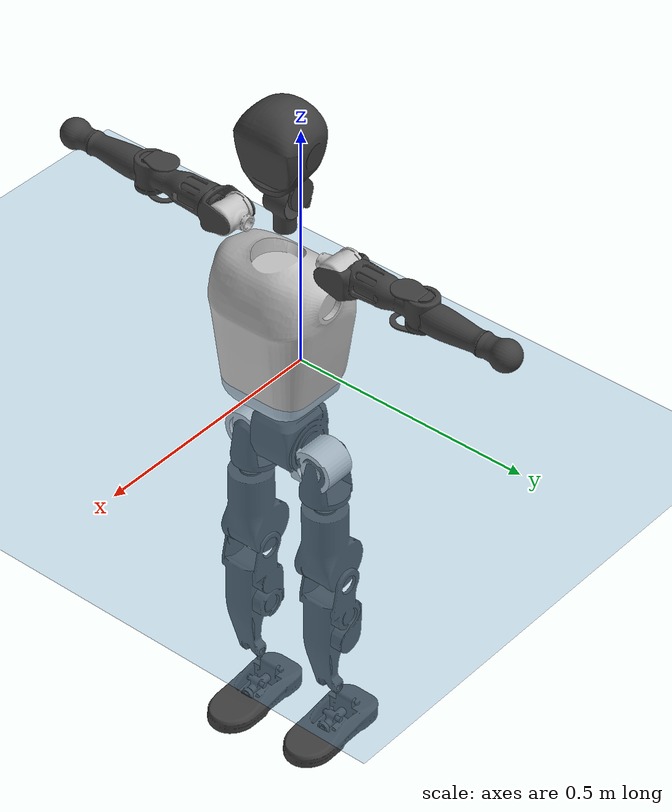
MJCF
<mujoco model="T1">
  <compiler angle="radian" assetdir="assets" balanceinertia="true" inertiafromgeom="false"/>

  <option timestep="0.005" density="1.2" viscosity="2e-05"/>

  <size nkey="1"/>

  <visual>
    <quality shadowsize="8192"/>
    <map shadowclip="0.5"/>
  </visual>

  <default>
    <default class="/">
      <joint armature="0.01" damping="0.01" frictionloss="0.1"/>
      <geom contype="0" conaffinity="0" group="1" solref="-1000 -80"/>
      <site size="0.01 0.005 0.005" group="5"/>
      <general forcelimited="true" biastype="affine" gainprm="25" biasprm="0 -25 -0.6"/>
      <default class="t1">
        <geom rgba="0.25 0.25 0.25 1"/>
        <default class="visual">
          <geom type="mesh" group="2"/>
        </default>
        <default class="collision">
          <geom group="3"/>
        </default>
        <default class="foot">
          <geom size="0.1115 0.05 0.015" type="box" condim="6" group="4" priority="1" solimp="0.015 1 0.015"/>
        </default>
        <default class="reward_collision_sphere">
          <geom group="5" rgba="1 0 0 1"/>
        </default>
      </default>
    </default>
  </default>

  <asset>
    <texture type="skybox" colorspace="auto" name="//unnamed_texture_0" builtin="gradient" rgb1="0.95 0.95 0.95" rgb2="0.95 0.95 0.95" width="100" height="600"/>
    <texture type="2d" colorspace="auto" name="texplane" builtin="checker" rgb1="0.345 0.575 0.748" rgb2="0.345 0.575 0.748" markrgb="1 1 1" width="512" height="512"/>
    <material name="MatPlane" class="/" texture="texplane" texuniform="true" texrepeat="2 2" specular="0.9"/>
    <mesh name="Trunk" class="/" file="Trunk.stl"/>
    <mesh name="H1" class="/" file="H1.stl"/>
    <mesh name="H2" class="/" file="H2.stl"/>
    <mesh name="AL1" class="/" file="AL1.stl"/>
    <mesh name="AL2" class="/" file="AL2.stl"/>
    <mesh name="AL3" class="/" file="AL3.stl"/>
    <mesh name="left_hand_link" class="/" file="left_hand_link.stl"/>
    <mesh name="AR1" class="/" file="AR1.stl"/>
    <mesh name="AR2" class="/" file="AR2.stl"/>
    <mesh name="AR3" class="/" file="AR3.stl"/>
    <mesh name="right_hand_link" class="/" file="right_hand_link.stl"/>
    <mesh name="Waist" class="/" file="Waist.stl"/>
    <mesh name="Hip_Pitch_Left" class="/" file="Hip_Pitch_Left.stl"/>
    <mesh name="Hip_Roll_Left" class="/" file="Hip_Roll_Left.stl"/>
    <mesh name="Hip_Yaw_Left" class="/" file="Hip_Yaw_Left.stl"/>
    <mesh name="Shank_Left" class="/" file="Shank_Left.stl"/>
    <mesh name="Ankle_Cross_Left" class="/" file="Ankle_Cross_Left.stl"/>
    <mesh name="left_foot_link" class="/" file="left_foot_link.stl"/>
    <mesh name="Hip_Pitch_Right" class="/" file="Hip_Pitch_Right.stl"/>
    <mesh name="Hip_Roll_Right" class="/" file="Hip_Roll_Right.stl"/>
    <mesh name="Hip_Yaw_Right" class="/" file="Hip_Yaw_Right.stl"/>
    <mesh name="Shank_Right" class="/" file="Shank_Right.stl"/>
    <mesh name="Ankle_Cross_Right" class="/" file="Ankle_Cross_Right.stl"/>
    <mesh name="right_foot_link" class="/" file="right_foot_link.stl"/>
  </asset>

  <worldbody>
    <geom name="floor" class="/" size="100 100 0.125" type="plane" group="0" material="MatPlane"/>
    <light name="toplight_shadow" class="/" pos="0 0 5" dir="0.0990148 0.0990148 -0.990148" type="directional" ambient="0.04 0.04 0.04" diffuse="0.55 0.55 0.55" specular="0.12 0.12 0.12"/>
    <light name="toplight_fill" class="/" pos="0 0 5" dir="0.0990148 0.0990148 -0.990148" type="directional" castshadow="false" ambient="0.04 0.04 0.04" diffuse="0.3 0.3 0.3" specular="0.08 0.08 0.08"/>
    <body name="trunk" childclass="t1" pos="0.00177125 -0.00226156 -0.00235265" quat="1 -4.97713e-05 -0.00032181 0.000104097">
      <inertial pos="0.0334844 0.00212708 0.138108" quat="0.99996 0.00106273 -0.00863826 -0.00188676" mass="8.26158" diaginertia="0.00585294 0.0228145 0.215082"/>
      <joint name="//unnamed_joint_0" type="free" armature="0" damping="0" frictionloss="0"/>
      <geom name="//unnamed_geom_1" class="visual" rgba="0.76 0.76 0.76 1" mesh="Trunk"/>
      <geom name="//unnamed_geom_2" class="collision" size="0.0670401 0.0893868 0.13408" pos="0.0349652 0 0.157035" type="box"/>
      <geom name="//unnamed_geom_3" class="reward_collision_sphere" size="0.102795" pos="0.0349652 0 0.130863"/>
      <geom name="//unnamed_geom_4" class="reward_collision_sphere" size="0.013408" pos="0.0349652 0.0671691 0"/>
      <geom name="//unnamed_geom_5" class="reward_collision_sphere" size="0.013408" pos="0.0349652 -0.0671691 0"/>
      <geom name="//unnamed_geom_6" class="reward_collision_sphere" size="0.013408" pos="0.0349652 0.084554 0.235553"/>
      <geom name="//unnamed_geom_7" class="reward_collision_sphere" size="0.013408" pos="0.0349652 -0.084554 0.235553"/>
      <site name="imu" pos="0.0314206 -0.0333665 0.0303083" size="0.00893868"/>
      <camera name="track" pos="0 -1.58045 0" quat="0.707107 0.707107 0 0" mode="trackcom"/>
      <camera name="ego_camera" pos="0.0710959 0 0.549623" quat="-0.5 -0.5 0.5 0.5"/>
      <body name="H1" pos="0.0366223 -0.00256704 0.31669" quat="0.999996 0.000376365 4.45542e-05 -0.00293885">
        <inertial pos="-0.000373134 0.000648783 0.0760588" quat="0.765704 -0.0138737 -0.009063 0.64298" mass="0.270829" diaginertia="1.59279e-05 6.57456e-05 0.000543861"/>
        <joint name="AAHead_yaw" pos="0 0 0" axis="-0.00605148 0.00306107 0.999977" range="-1.5198 1.55061" armature="0.00582612" damping="0.0256108" frictionloss="0.0909828"/>
        <geom name="//unnamed_geom_8" class="visual" mesh="H1"/>
        <body name="H2" pos="-0.00798301 0.00146639 0.0806287" quat="1 5.47465e-06 -0.000261342 0.00016299">
          <inertial pos="0.00308797 0.00264908 0.12719" quat="0.987109 0.109652 -0.0760828 -0.0883362" mass="0.439744" diaginertia="0.000138415 0.000579047 0.00650156"/>
          <joint name="Head_pitch" pos="0 0 0" axis="0.0108785 -0.99991 0.00785063" range="-1.26488 0.380396" armature="0.00941972" damping="0.00706215" frictionloss="0.0792228"/>
          <geom name="//unnamed_geom_9" class="visual" mesh="H2"/>
          <geom name="//unnamed_geom_10" class="collision" size="0.0715094" pos="0.00582753 0 0.143949"/>
          <geom name="//unnamed_geom_11" class="reward_collision_sphere" size="0.0804481" pos="0.0116551 0 0.130863"/>
        </body>
      </body>
      <body name="AL1" pos="0.0389642 0.082133 0.288123" quat="0.999998 0.000370227 0.00135004 -0.00137671">
        <inertial pos="-0.000509126 0.0311737 -0.000364414" quat="0.512535 0.495548 -0.503158 0.488439" mass="0.389577" diaginertia="9.03438e-05 0.000396914 0.00112103"/>
        <joint name="Left_Shoulder_Pitch" pos="0 0 0" axis="0.0093459 0.999882 0.0122132" range="-3.30141 1.17892" armature="0.00839454" damping="0.0144264" frictionloss="0.0978978"/>
        <geom name="//unnamed_geom_12" class="visual" rgba="0.76 0.76 0.76 1" mesh="AL1"/>
        <body name="AL2" pos="0.00374155 0.0368475 -0.000236775" quat="1 -0.000317811 5.81184e-05 -3.81905e-05">
          <inertial pos="0.00497211 0.0283096 -0.00506353" quat="0.488765 0.505036 -0.493027 0.512808" mass="0.103952" diaginertia="2.62256e-05 0.000110192 0.000650701"/>
          <joint name="Left_Shoulder_Roll" pos="0 0 0" axis="-0.999986 0.0025685 0.00460913" range="-1.69366 1.62055" armature="0.0114518" damping="0.0128601" frictionloss="0.0871309"/>
          <geom name="//unnamed_geom_13" class="visual" mesh="AL2"/>
          <body name="AL3" pos="-0.00209856 0.045169 0.00488922" quat="0.999999 -0.000542765 -0.000556101 0.000868833">
            <inertial pos="-0.00225414 0.067388 -0.000502338" quat="0.705737 0.708469 0.000313108 0.00247419" mass="0.698879" diaginertia="0.000883737 0.00379176 0.00256025"/>
            <joint name="Left_Elbow_Pitch" pos="0 0 0" axis="-0.0057825 -0.999329 -0.0361693" stiffness="0.0360577" range="-2.39683 2.19061" armature="0.0123867" damping="0.0489201" frictionloss="0.102058"/>
            <geom name="//unnamed_geom_14" class="visual" mesh="AL3"/>
            <geom name="//unnamed_geom_15" class="collision" size="0.026816 0.0670401" pos="0 0.0395112 0" quat="0.707105 0.707108 0 0" type="cylinder"/>
            <geom name="//unnamed_geom_16" class="reward_collision_sphere" size="0.0321792"/>
            <body name="left_hand_link" pos="0.00378814 0.112934 -0.00336239" quat="1 4.20847e-05 -0.000114268 -3.43186e-05">
              <inertial pos="-0.00164288 0.0888971 -0.000275594" quat="0.707218 0.706994 0.0010654 -0.00119328" mass="0.237794" diaginertia="0.000507785 0.00233412 0.000854065"/>
              <joint name="Left_Elbow_Yaw" pos="0 0 0" axis="-0.00124195 0.0109492 0.999939" range="-2.43394 0.039682" armature="0.00592489" damping="0.0177941" frictionloss="0.0955997"/>
              <geom name="//unnamed_geom_17" class="visual" mesh="left_hand_link"/>
              <geom name="//unnamed_geom_18" class="collision" size="0.026816 0.0782134" pos="0 0.102729 0" quat="0.707105 0.707108 0 0" type="cylinder"/>
              <geom name="//unnamed_geom_19" class="reward_collision_sphere" size="0.0446934"/>
              <geom name="//unnamed_geom_20" class="reward_collision_sphere" size="0.0312854" pos="0 0.0869247 0"/>
              <geom name="//unnamed_geom_21" class="reward_collision_sphere" size="0.0312854" pos="0 0.169898 0"/>
            </body>
          </body>
        </body>
      </body>
      <body name="AR1" pos="0.0377888 -0.0848955 0.287031" quat="0.999999 0.00108024 -0.000250762 -0.000239737">
        <inertial pos="0.00539613 -0.0350518 -0.00289407" quat="0.510765 0.463836 -0.519731 0.50384" mass="0.381976" diaginertia="9.42714e-05 0.000409405 0.0010536"/>
        <joint name="Right_Shoulder_Pitch" pos="0 0 0" axis="-0.00203776 -0.999913 -0.0130525" range="-1.21552 3.29503" armature="0.00946595" damping="0" frictionloss="0.101683"/>
        <geom name="//unnamed_geom_22" class="visual" rgba="0.76 0.76 0.76 1" mesh="AR1"/>
        <body name="AR2" pos="-0.00167013 -0.0379762 -0.000342421" quat="1 -0.000421265 -0.00010609 0.000244013">
          <inertial pos="0.00359486 -0.0277807 -0.000296953" quat="0.512255 0.487906 -0.510066 0.489259" mass="0.111072" diaginertia="2.75682e-05 9.92687e-05 0.000665679"/>
          <joint name="Right_Shoulder_Roll" pos="0 0 0" axis="-0.999996 -0.000639029 -0.00258255" range="-1.75578 1.43656" armature="0.0102648" damping="0" frictionloss="0.099361"/>
          <geom name="//unnamed_geom_23" class="visual" mesh="AR2"/>
          <body name="AR3" pos="-0.00228945 -0.0505731 0.00311804" quat="1 -0.000156889 3.25395e-05 0.000282287">
            <inertial pos="0.000549144 -0.0614408 -0.00386179" quat="0.701486 0.712575 -0.00764676 -0.0097842" mass="0.743201" diaginertia="0.000857256 0.00408696 0.0022705"/>
            <joint name="Right_Elbow_Pitch" pos="0 0 0" axis="0.000385831 1 -0.00069173" range="-2.30315 2.33134" armature="0.00867133" damping="0" frictionloss="0.0885547"/>
            <geom name="//unnamed_geom_24" class="visual" mesh="AR3"/>
            <geom name="//unnamed_geom_25" class="collision" size="0.026816 0.0670401" pos="0 -0.0395112 0" quat="0.707105 0.707108 0 0" type="cylinder"/>
            <geom name="//unnamed_geom_26" class="reward_collision_sphere" size="0.0321792"/>
            <body name="right_hand_link" pos="-0.00257183 -0.116654 -0.00143684" quat="1 -1.40317e-05 2.75363e-06 3.09036e-05">
              <inertial pos="0.000240735 -0.0890521 0.00464008" quat="0.713703 0.700441 0.00312443 -0.00080753" mass="0.229466" diaginertia="0.000556008 0.00247998 0.000846595"/>
              <joint name="Right_Elbow_Yaw" pos="0 0 0" axis="-0.00191258 -0.0121894 0.999924" range="0.0455446 2.45546" armature="0.0102993" damping="0.00181417" frictionloss="0.0786651"/>
              <geom name="//unnamed_geom_27" class="visual" mesh="right_hand_link"/>
              <geom name="//unnamed_geom_28" class="collision" size="0.026816 0.0782134" pos="0 -0.102729 0" quat="0.707105 0.707108 0 0" type="cylinder"/>
              <geom name="//unnamed_geom_29" class="reward_collision_sphere" size="0.0446934"/>
              <geom name="//unnamed_geom_30" class="reward_collision_sphere" size="0.0312854" pos="0 -0.0869247 0"/>
              <geom name="//unnamed_geom_31" class="reward_collision_sphere" size="0.0312854" pos="0 -0.169898 0"/>
            </body>
          </body>
        </body>
      </body>
      <body name="Waist" pos="0.032356 0.00256051 -0.150375" quat="1 0.000283912 0.000143512 0.000186289">
        <inertial pos="0.00957648 -0.00308365 0.00971143" quat="0.984534 -0.00420057 -0.175042 -0.00594081" mass="1.79148" diaginertia="0.00038816 0.00158038 0.0178664"/>
        <joint name="Waist" pos="0 0 0" axis="-0.0314876 -0.0104846 0.999449" range="-1.54925 1.55349" armature="0.00911332" damping="0" frictionloss="0.086924"/>
        <geom name="//unnamed_geom_32" class="visual" mesh="Waist"/>
        <body name="Hip_Pitch_Left" pos="0.00595736 0.0817661 -0.0027233" quat="0.999992 -0.00186373 0.00196538 0.00305343">
          <inertial pos="0.00406405 -0.0121654 -0.0255861" quat="0.976521 0.215127 0.010615 0.00373963" mass="0.786953" diaginertia="0.000132732 0.000477208 0.00479581"/>
          <joint name="Left_Hip_Pitch" pos="0 0 0" axis="0.000141643 0.999992 0.00405234" stiffness="0.00631512" range="-1.83881 1.59904" armature="0.0106967" damping="0" frictionloss="0.0589816"/>
          <geom name="//unnamed_geom_33" class="visual" rgba="0.76 0.76 0.76 1" mesh="Hip_Pitch_Left"/>
          <body name="Hip_Roll_Left" pos="-0.00746848 0.00205902 -0.0182739" quat="0.999992 -0.000576374 0.00378874 0.00143696">
            <inertial pos="-0.001383 -3.40125e-06 -0.0642596" quat="0.707484 -0.0157007 -0.0112144 0.706466" mass="0.287254" diaginertia="0.000116156 0.000488559 0.00199286"/>
            <joint name="Left_Hip_Roll" pos="0 0 0" axis="-0.999944 -0.00741282 -0.00756133" stiffness="0.00624972" range="-1.56149 0.224732" armature="0.00786355" damping="0" frictionloss="0.0890723"/>
            <geom name="//unnamed_geom_34" class="visual" mesh="Hip_Roll_Left"/>
            <geom name="//unnamed_geom_35" class="reward_collision_sphere" size="0.0491627"/>
            <body name="Hip_Yaw_Left" pos="0.000128415 0.000901763 -0.10839" quat="1 -0.000627509 0.000413658 -0.000233475">
              <inertial pos="-0.00401749 -0.00800112 -0.122693" quat="0.692418 -0.0305352 -0.0320601 0.720137" mass="1.46126" diaginertia="0.00163448 0.00736808 0.00962913"/>
              <joint name="Left_Hip_Yaw" pos="0 0 0" axis="-0.0029201 0.00288222 -0.999992" range="-1.0512 0.977347" armature="0.00874613" damping="0" frictionloss="0.0792215"/>
              <geom name="//unnamed_geom_36" class="visual" mesh="Hip_Yaw_Left"/>
              <geom name="//unnamed_geom_37" class="collision" size="0.0446934 0.0715094" type="cylinder"/>
              <body name="Shank_Left" pos="-0.0120247 0.00465814 -0.173807" quat="0.999998 -0.00184465 -2.72877e-05 0.000616899">
                <inertial pos="-0.00293467 0.00266456 -0.162483" quat="0.995385 -0.00459784 -0.0370323 0.0884126" mass="1.17469" diaginertia="0.00229576 0.0102519 0.00695164"/>
                <joint name="Left_Knee_Pitch" pos="0 0 0" axis="0.00453933 0.999983 -0.00373933" range="-0.0178539 2.43343" armature="0.00729333" damping="0.00810933" frictionloss="0.0909908"/>
                <geom name="//unnamed_geom_38" class="visual" mesh="Shank_Left"/>
                <geom name="//unnamed_geom_39" class="collision" size="0.0446934 0.0670401" pos="0 0 -0.157035" type="cylinder"/>
                <geom name="//unnamed_geom_40" class="reward_collision_sphere" size="0.0581014"/>
                <body name="Ankle_Cross_Left" pos="-0.00165083 0.00351906 -0.365561" quat="1 -1.03897e-06 -4.49197e-07 -9.37433e-06">
                  <inertial pos="-0.00404303 0.00227237 -0.00941612" quat="0.44081 0.541497 0.564423 0.440334" mass="0.0543606" diaginertia="1.89869e-06 8.10647e-06 4.46579e-05"/>
                  <joint name="Left_Ankle_Pitch" pos="0 0 0" axis="-0.00304147 0.999995 -0.00120282" range="-0.738332 0.220834" armature="0.00807572" damping="0.0450064" frictionloss="0.0820085"/>
                  <geom name="//unnamed_geom_41" class="visual" mesh="Ankle_Cross_Left"/>
                  <body name="left_foot_link" pos="0.00105782 0.000874741 -0.0105169" quat="0.999995 0.000234924 -0.00310033 -0.00111157">
                    <inertial pos="-0.00192959 0.00234618 -0.00969638" quat="-0.00873102 0.625271 -0.015394 0.780207" mass="0.437604" diaginertia="0.000162635 0.000669681 0.00679348"/>
                    <joint name="Left_Ankle_Roll" pos="0 0 0" axis="-0.999725 -0.0162262 0.0169498" range="-0.423381 0.301983" armature="0.0086349" damping="0.00583666" frictionloss="0.051951"/>
                    <geom name="//unnamed_geom_42" class="visual" mesh="left_foot_link"/>
                    <geom name="left_foot" class="foot" size="0.104638 0.0563492 0.0092014" pos="0.00582753 0 -0.0196294"/>
                    <geom name="//unnamed_geom_44" class="reward_collision_sphere" size="0.0464811" pos="0.00582753 0 -0.0196294"/>
                    <geom name="//unnamed_geom_45" class="reward_collision_sphere" size="0.026816" pos="0.0553615 -0.0181752 -0.0196294"/>
                    <geom name="//unnamed_geom_46" class="reward_collision_sphere" size="0.026816" pos="-0.0407927 -0.0181752 -0.0196294"/>
                    <site name="left_foot" class="foot" pos="0.00582753 0 -0.0196294" size="0.00893868"/>
                  </body>
                </body>
              </body>
            </body>
          </body>
        </body>
        <body name="Hip_Pitch_Right" pos="0.000582017 -0.0840149 0.000665633" quat="0.999999 -0.000580311 0.000196727 0.000834593">
          <inertial pos="-2.73777e-05 0.00566241 -0.0230744" quat="0.966305 -0.25683 0.00964284 0.0141263" mass="0.79345" diaginertia="0.000132394 0.000487539 0.00518357"/>
          <joint name="Right_Hip_Pitch" pos="0 0 0" axis="0.00636416 -0.999978 -0.00184375" stiffness="0.00643955" range="-1.53786 1.82233" armature="0.00884368" damping="0.00749175" frictionloss="0.0905607"/>
          <geom name="//unnamed_geom_47" class="visual" rgba="0.76 0.76 0.76 1" mesh="Hip_Pitch_Right"/>
          <body name="Hip_Roll_Right" pos="-0.00276803 0.00100621 -0.0201524" quat="1 -0.000764308 -0.000161863 -0.000295021">
            <inertial pos="-6.68768e-05 -0.00215511 -0.0704462" quat="0.697347 -0.0137118 -0.000931693 0.716602" mass="0.294521" diaginertia="0.000122143 0.000488862 0.00214505"/>
            <joint name="Right_Hip_Roll" pos="0 0 0" axis="-0.999951 -0.00735321 -0.00667175" stiffness="0.0450619" range="-0.246495 1.57454" armature="0.00959468" damping="0.00533783" frictionloss="0.0893187"/>
            <geom name="//unnamed_geom_48" class="visual" mesh="Hip_Roll_Right"/>
            <geom name="//unnamed_geom_49" class="reward_collision_sphere" size="0.0491627"/>
            <body name="Hip_Yaw_Right" pos="0.00471873 -0.00776989 -0.107884" quat="1 -3.01301e-05 3.47867e-05 0.000171526">
              <inertial pos="-0.000633775 0.000402983 -0.109655" quat="0.712529 -0.0375121 -0.0145733 0.700487" mass="1.49963" diaginertia="0.00180803 0.00823096 0.0104983"/>
              <joint name="Right_Hip_Yaw" pos="0 0 0" axis="0.0132807 0.000725862 -0.999912" range="-1.10327 1.0298" armature="0.00997507" damping="0" frictionloss="0.0921583"/>
              <geom name="//unnamed_geom_50" class="visual" mesh="Hip_Yaw_Right"/>
              <geom name="//unnamed_geom_51" class="collision" size="0.0446934 0.0715094" type="cylinder"/>
              <body name="Shank_Right" pos="-0.00755416 -0.00358956 -0.178214" quat="1 4.24854e-05 5.99643e-05 0.000568547">
                <inertial pos="-0.0116749 0.00247446 -0.160467" quat="0.999034 -0.0162318 -0.0352568 -0.020581" mass="1.39365" diaginertia="0.00250148 0.0106609 0.00802217"/>
                <joint name="Right_Knee_Pitch" pos="0 0 0" axis="0.00206738 -0.999822 0.018733" range="-2.36449 0.0310849" armature="0.00816785" damping="0.0161258" frictionloss="0.0728721"/>
                <geom name="//unnamed_geom_52" class="visual" mesh="Shank_Right"/>
                <geom name="//unnamed_geom_53" class="collision" size="0.0446934 0.0670401" pos="0 0 -0.157035" type="cylinder"/>
                <geom name="//unnamed_geom_54" class="reward_collision_sphere" size="0.0581014"/>
                <body name="Ankle_Cross_Right" pos="0.000568829 0.00679678 -0.366393" quat="0.999995 -0.00253341 -0.00155571 0.000933817">
                  <inertial pos="-0.00425013 6.60042e-05 -0.0126983" quat="0.442663 0.546891 0.552566 0.446801" mass="0.0526856" diaginertia="2.06649e-06 7.89347e-06 4.28045e-05"/>
                  <joint name="Right_Ankle_Pitch" pos="0 0 0" axis="-0.00138109 -0.999996 0.0023886" range="-0.339743 0.731234" armature="0.00804883" damping="0" frictionloss="0.0898691"/>
                  <geom name="//unnamed_geom_55" class="visual" mesh="Ankle_Cross_Right"/>
                  <body name="right_foot_link" pos="0.00119297 0.000118105 -0.0135952" quat="0.999998 -0.00112859 -0.00154739 0.000275902">
                    <inertial pos="0.00357365 -0.00170375 -0.0113253" quat="0.000874795 0.623673 0.00429911 0.781673" mass="0.491704" diaginertia="0.000195939 0.00075816 0.00831853"/>
                    <joint name="Right_Ankle_Roll" pos="0 0 0" axis="-0.999915 0.00299734 0.0126496" range="-0.468405 0.452384" armature="0.0093824" damping="0.0173059" frictionloss="0.0974844"/>
                    <geom name="//unnamed_geom_56" class="visual" mesh="right_foot_link"/>
                    <geom name="right_foot" class="foot" size="0.0903885 0.0529042 0.0122023" pos="0.00582753 0 -0.0196294"/>
                    <geom name="//unnamed_geom_58" class="reward_collision_sphere" size="0.0357547"/>
                    <geom name="//unnamed_geom_59" class="reward_collision_sphere" size="0.026816" pos="0.00582753 0 -0.0196294"/>
                    <geom name="//unnamed_geom_60" class="reward_collision_sphere" size="0.026816" pos="0.0553615 0.0181752 -0.0196294"/>
                    <geom name="//unnamed_geom_61" class="reward_collision_sphere" size="0.026816" pos="-0.0407927 0.0181752 -0.0196294"/>
                    <site name="right_foot" class="foot" pos="0.00582753 0 -0.0196294" size="0.00893868"/>
                  </body>
                </body>
              </body>
            </body>
          </body>
        </body>
      </body>
    </body>
  </worldbody>

  <contact>
    <pair class="/" geom1="floor" geom2="left_foot" name="//unnamed_contact_0"/>
    <pair class="/" geom1="floor" geom2="right_foot" name="//unnamed_contact_1"/>
  </contact>

  <actuator>
    <general name="AAHead_yaw" class="/" joint="AAHead_yaw" forcerange="-5.99658 5.99658" gainprm="25.9286" biasprm="0 -25.9286 -0.570599"/>
    <general name="Head_pitch" class="/" joint="Head_pitch" forcerange="-6.66955 6.66955" gainprm="25.9286" biasprm="0 -25.9286 -0.570599"/>
    <general name="Left_Shoulder_Pitch" class="/" joint="Left_Shoulder_Pitch" forcerange="-17.3273 17.3273" gainprm="25.9286" biasprm="0 -25.9286 -0.570599"/>
    <general name="Left_Shoulder_Roll" class="/" joint="Left_Shoulder_Roll" forcerange="-16.7307 16.7307" gainprm="25.9286" biasprm="0 -25.9286 -0.570599"/>
    <general name="Left_Elbow_Pitch" class="/" joint="Left_Elbow_Pitch" forcerange="-20.2246 20.2246" gainprm="25.9286" biasprm="0 -25.9286 -0.570599"/>
    <general name="Left_Elbow_Yaw" class="/" joint="Left_Elbow_Yaw" forcerange="-12.9447 12.9447" gainprm="25.9286" biasprm="0 -25.9286 -0.570599"/>
    <general name="Right_Shoulder_Pitch" class="/" joint="Right_Shoulder_Pitch" forcerange="-12.6496 12.6496" gainprm="25.9286" biasprm="0 -25.9286 -0.570599"/>
    <general name="Right_Shoulder_Roll" class="/" joint="Right_Shoulder_Roll" forcerange="-15.9048 15.9048" gainprm="25.9286" biasprm="0 -25.9286 -0.570599"/>
    <general name="Right_Elbow_Pitch" class="/" joint="Right_Elbow_Pitch" forcerange="-16.334 16.334" gainprm="25.9286" biasprm="0 -25.9286 -0.570599"/>
    <general name="Right_Elbow_Yaw" class="/" joint="Right_Elbow_Yaw" forcerange="-15.9495 15.9495" gainprm="25.9286" biasprm="0 -25.9286 -0.570599"/>
    <general name="Waist" class="/" joint="Waist" forcerange="-25.3678 25.3678" gainprm="25.9286" biasprm="0 -25.9286 -0.570599"/>
    <general name="Left_Hip_Pitch" class="/" joint="Left_Hip_Pitch" forcerange="-39.7643 39.7643" gainprm="25.9286" biasprm="0 -25.9286 -0.570599"/>
    <general name="Left_Hip_Roll" class="/" joint="Left_Hip_Roll" forcerange="-21.0232 21.0232" gainprm="25.9286" biasprm="0 -25.9286 -0.570599"/>
    <general name="Left_Hip_Yaw" class="/" joint="Left_Hip_Yaw" forcerange="-33.8121 33.8121" gainprm="25.9286" biasprm="0 -25.9286 -0.570599"/>
    <general name="Left_Knee_Pitch" class="/" joint="Left_Knee_Pitch" forcerange="-67.3448 67.3448" gainprm="25.9286" biasprm="0 -25.9286 -0.570599"/>
    <general name="Left_Ankle_Pitch" class="/" joint="Left_Ankle_Pitch" forcerange="-18.1739 18.1739" gainprm="25.9286" biasprm="0 -25.9286 -0.570599"/>
    <general name="Left_Ankle_Roll" class="/" joint="Left_Ankle_Roll" forcerange="-13.4393 13.4393" gainprm="25.9286" biasprm="0 -25.9286 -0.570599"/>
    <general name="Right_Hip_Pitch" class="/" joint="Right_Hip_Pitch" forcerange="-42.0027 42.0027" gainprm="25.9286" biasprm="0 -25.9286 -0.570599"/>
    <general name="Right_Hip_Roll" class="/" joint="Right_Hip_Roll" forcerange="-26.4915 26.4915" gainprm="25.9286" biasprm="0 -25.9286 -0.570599"/>
    <general name="Right_Hip_Yaw" class="/" joint="Right_Hip_Yaw" forcerange="-25.976 25.976" gainprm="25.9286" biasprm="0 -25.9286 -0.570599"/>
    <general name="Right_Knee_Pitch" class="/" joint="Right_Knee_Pitch" forcerange="-55.1749 55.1749" gainprm="25.9286" biasprm="0 -25.9286 -0.570599"/>
    <general name="Right_Ankle_Pitch" class="/" joint="Right_Ankle_Pitch" forcerange="-21.0806 21.0806" gainprm="25.9286" biasprm="0 -25.9286 -0.570599"/>
    <general name="Right_Ankle_Roll" class="/" joint="Right_Ankle_Roll" forcerange="-13.4818 13.4818" gainprm="25.9286" biasprm="0 -25.9286 -0.570599"/>
  </actuator>

  <sensor>
    <gyro site="imu" name="imu_angular_velocity"/>
    <velocimeter site="imu" name="imu_linear_velocity"/>
    <framelinvel objtype="site" objname="left_foot" name="left_foot_global_linear_velocity"/>
    <framelinvel objtype="site" objname="right_foot" name="right_foot_global_linear_velocity"/>
  </sensor>

  <keyframe>
    <key name="home" qpos="0 0 0.6385 1 0 0 0 0 0 0 1.4 0 -0.4 0 -1.4 0 0.4 0 -0.4 0 0 0.8 -0.4 0 0.4 0 0 -0.8 0.4 0"/>
  </keyframe>
</mujoco>
